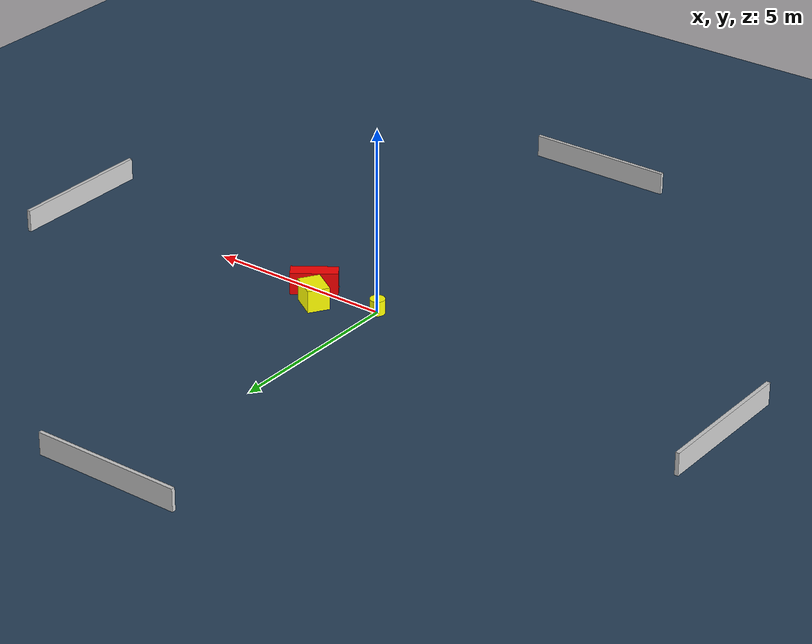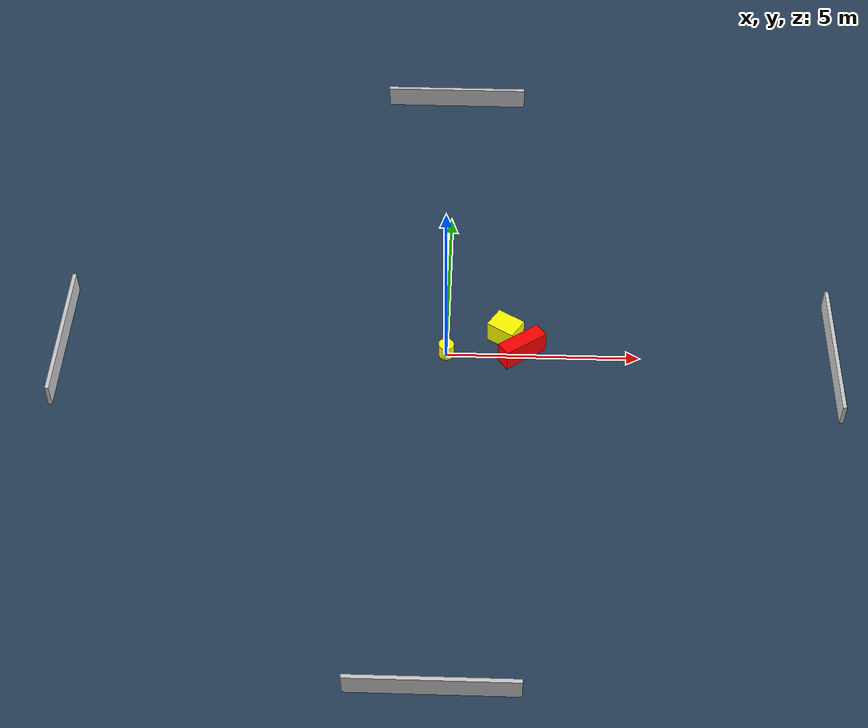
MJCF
<?xml version="1.0" ?>
<mujoco model="generated_environment">
  <option timestep="0.01" integrator="RK4" cone="elliptic"/>
  <default>
    <geom density="1"/>
  </default>
  <asset>
    <texture builtin="gradient" height="3072" name="skybox" rgb1="0.3 0.5 0.7" rgb2="0 0 0" type="skybox" width="512"/>
    <texture builtin="checker" height="300" name="groundplane" rgb1="0.2 0.3 0.4" rgb2="0.1 0.2 0.3" type="2d" width="300"/>
    <material name="groundplane" reflectance="0.2" texrepeat="5 5" texture="groundplane"/>
  </asset>
  <worldbody>
    <light dir="0 0 -1" directional="true" pos="0 0 1.5"/>
    <geom condim="3" friction="0.5 0.005 0.001" material="groundplane" name="floor" pos="0 0 0" size="0 0 0.05" type="plane"/>
    <body name="walls">
      <geom name="wall_1" condim="4" pos="-10.0 0.0 0.3" rgba="0.800000011920929 0.800000011920929 0.800000011920929 1.0" size="0.05 2.0 0.3" type="box"/>
      <geom name="wall_2" condim="4" pos="10.0 0.0 0.3" rgba="0.800000011920929 0.800000011920929 0.800000011920929 1.0" size="0.05 2.0 0.3" type="box"/>
      <geom name="wall_3" condim="4" pos="0.0 -10.0 0.3" rgba="0.800000011920929 0.800000011920929 0.800000011920929 1.0" size="2.0 0.05 0.3" type="box"/>
      <geom name="wall_4" condim="4" pos="0.0 10.0 0.3" rgba="0.800000011920929 0.800000011920929 0.800000011920929 1.0" size="2.0 0.05 0.3" type="box"/>
    </body>
    <body name="robot">
      <joint name="joint_x" type="slide" pos="0 0 0" axis="1 0 0"/>
      <joint name="joint_y" type="slide" pos="0 0 0" axis="0 1 0"/>
      <geom name="robot" type="cylinder" pos="0.0 0.0 0.2" size="0.2 0.2 0.0" mass="5.0" friction="1.0 0.005 0.0001" condim="4" rgba="1.0 1.0 0.0 1.0"/>
    </body>
    <body name="obstacle_1_movable">
      <geom name="obstacle_1_movable" condim="4" pos="1.5313556306377114 0.6185638330574047 0.3" euler="0 0 147.6227522311123" friction="0.0 0.005 0.001" rgba="1.0 1.0 0.0 1.0" size="0.3834198261890396 0.2942648250397068 0.3" type="box" mass="0.1"/>
      <joint type="free"/>
    </body>
    <body name="obstacle_2_static">
      <geom name="obstacle_2_static" condim="4" pos="1.9615184255754152 0.05417534247297839 0.3" euler="0 0 305.3254384618222" friction="0.0 0.005 0.001" rgba="1.0 0.0 0.0 1.0" size="0.2030792036522584 0.6143687068026524 0.3" type="box"/>
    </body>
  </worldbody>
  <actuator>
    <motor name="actuator_x" joint="joint_x" gear="1" ctrlrange="-1 1"/>
    <motor name="actuator_y" joint="joint_y" gear="1" ctrlrange="-1 1"/>
  </actuator>
</mujoco>
